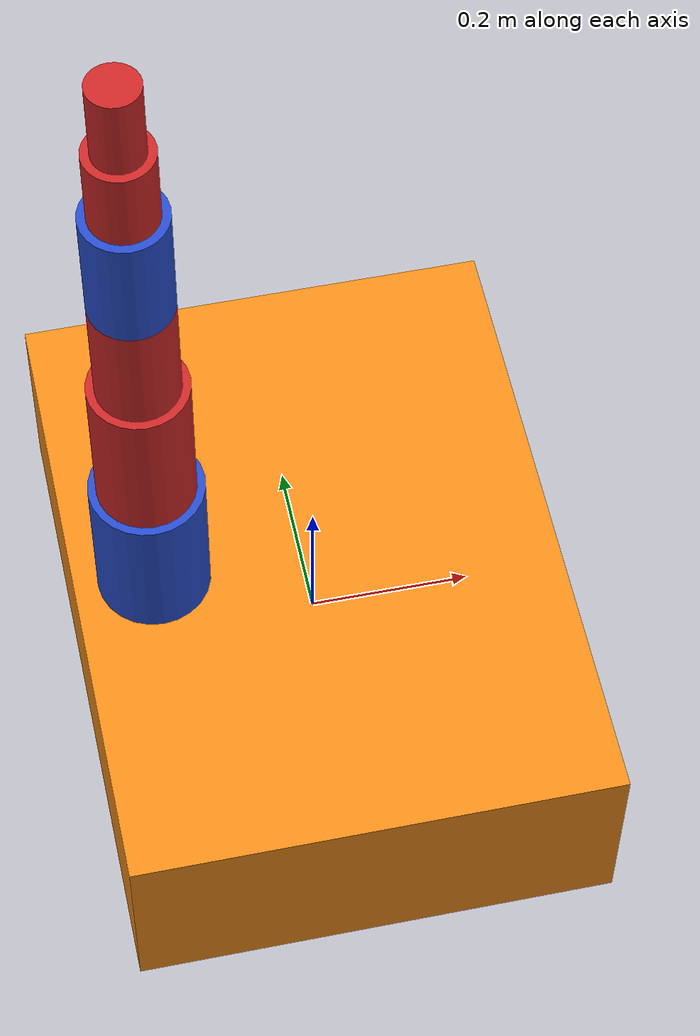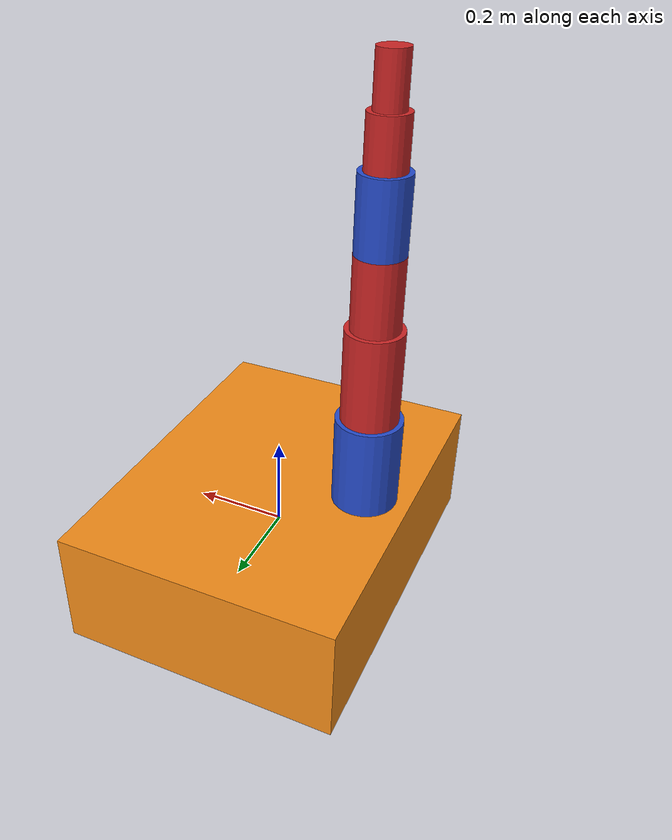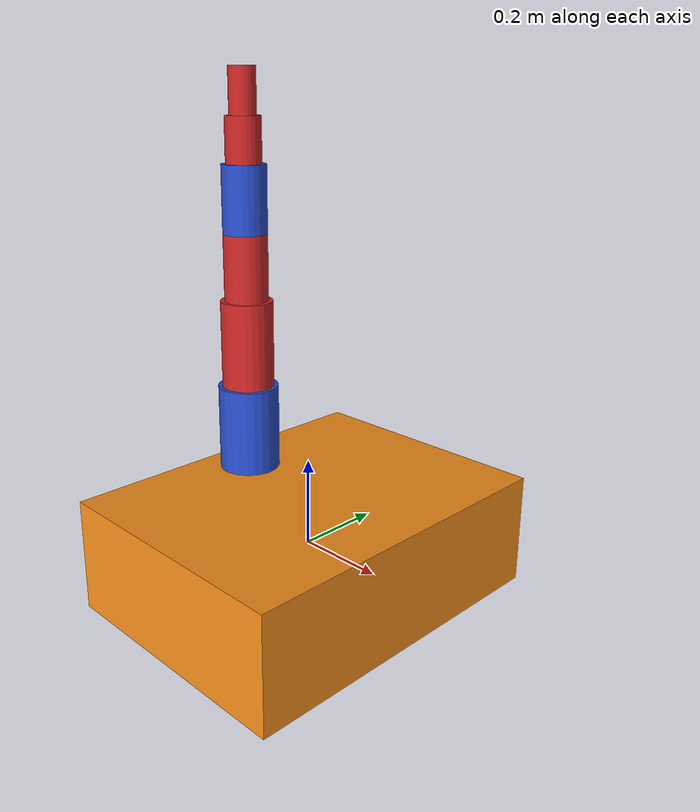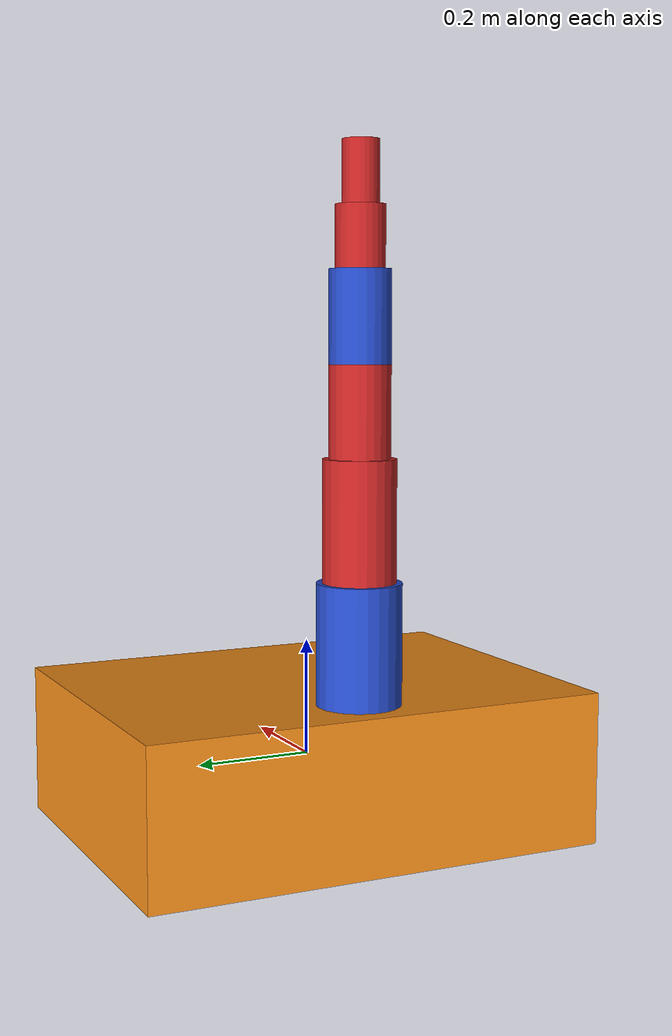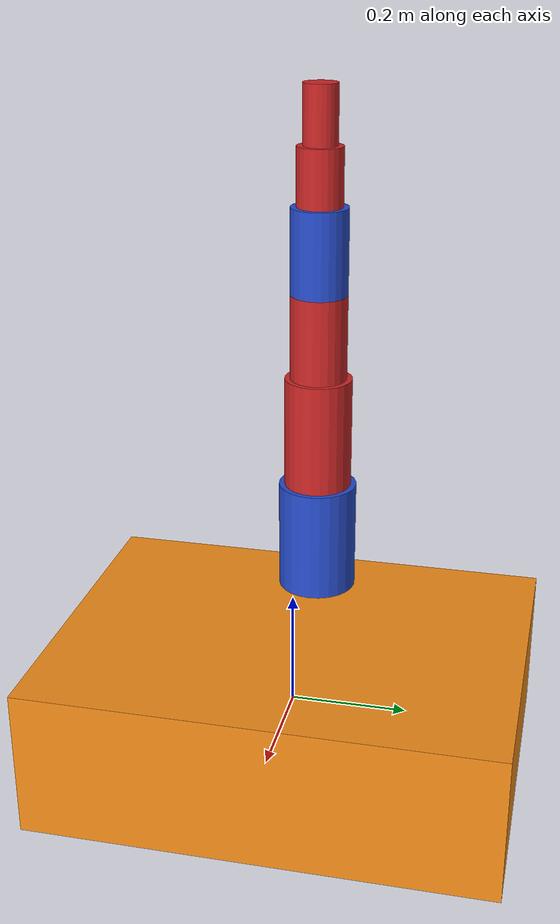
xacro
<?xml version="1.0"?>
<robot xmlns:xacro="http://www.ros.org/wiki/xacro">

<!--Arm base link-->

    <xacro:property name="arm_base_length" value="0.6" />
    <xacro:property name="arm_base_width" value="0.8" />
    <xacro:property name="arm_base_height" value="0.26" />

    <link name="arm_base_link">
        <visual>
            <geometry>
                <box size="${arm_base_length} ${arm_base_width} ${arm_base_height}" />
            </geometry>
            <origin xyz="0 0 0" rpy="0 0 0" />
            <material name="orange" />
        </visual>
        <collision>
            <geometry>
                <box size="${arm_base_length} ${arm_base_width} ${arm_base_height}" />
            </geometry>
            <origin xyz="0 0 0" rpy="0 0 0" />
        </collision>
        <xacro:box_inertia m="10.0" x="${arm_base_length}" y="${arm_base_width}" z="${arm_base_height}"
                           o_xyz="0 0 0" o_rpy="0 0 0" />
    </link>

  <!-- Links and Joints -->

  <xacro:macro name="arm_link" params="link_name parent_name xyz rpy length radius mass ixx iyy izz">
    <link name="${link_name}">
      <visual>
        <geometry>
          <cylinder length="${length}" radius="${radius}"/>
        </geometry>
        <origin xyz="0 0 ${length/2}" rpy="0 0 0"/>
        <material name="red"/>
      </visual>
      <collision>
        <geometry>
          <cylinder length="${length}" radius="${radius}"/>
        </geometry>
        <origin xyz="0 0 ${length/2}" rpy="0 0 0"/>
      </collision>
      <xacro:cylinder_inertia m="0.3" r="${radius}" l="${length}"
                                o_xyz="0 0 ${length / 2.0}" o_rpy="0 0 0" />
    </link>

    <joint name="${link_name}_joint" type="revolute">
      <parent link="${parent_name}"/>
      <child link="${link_name}"/>
      <origin xyz="${xyz}" rpy="${rpy}"/>
      <axis xyz="0 1 0"/>
      <limit lower="${-pi/2}" upper="${pi/2}" effort="100" velocity="100" />
      <dynamics friction="10.0" damping="50.0" />
    </joint>
  </xacro:macro>

     <!-- Z-axis Rotating Link and Joint -->

  <xacro:macro name="z_axis_arm_link" params="link_name parent_name xyz rpy length radius mass ixx iyy izz">
    <link name="${link_name}">
      <visual>
        <geometry>
          <cylinder length="${length}" radius="${radius}"/>
        </geometry>
        <origin xyz="0 0 ${length/2}" rpy="0 0 0"/>
        <material name="blue"/>
      </visual>
      <collision>
        <geometry>
          <cylinder length="${length}" radius="${radius}"/>
        </geometry>
        <origin xyz="0 0 ${length/2}" rpy="0 0 0"/>
      </collision>
      <xacro:cylinder_inertia m="0.3" r="${radius}" l="${length}"
                                o_xyz="0 0 ${length / 2.0}" o_rpy="0 0 0" />
    </link>

    <joint name="${link_name}_joint" type="revolute">
      <parent link="${parent_name}"/>
      <child link="${link_name}"/>
      <origin xyz="${xyz}" rpy="${rpy}"/>
      <axis xyz="0 0 1"/>
      <limit lower="${-pi/2}" upper="${pi/2}" effort="100" velocity="100" />
      <dynamics friction="10.0" damping="50.0" />
    </joint>
  </xacro:macro>

  <!-- Instantiate 6 links -->
  <xacro:z_axis_arm_link link_name="link_1" parent_name="arm_base_link" xyz="${-arm_base_width/4.0} 0 0.13" rpy="0 0 0" length="0.2" radius="0.07" mass="1.0" ixx="0.005" iyy="0.005" izz="0.005"/>
  <xacro:arm_link link_name="link_2" parent_name="link_1" xyz="0 0 0.2" rpy="0 0 0" length="0.2" radius="0.06" mass="0.8" ixx="0.003" iyy="0.003" izz="0.003"/>
  <xacro:arm_link link_name="link_3" parent_name="link_2" xyz="0 0 0.2" rpy="0 0 0" length="0.15" radius="0.05" mass="0.6" ixx="0.002" iyy="0.002" izz="0.002"/>
  <xacro:z_axis_arm_link link_name="link_4" parent_name="link_3" xyz="0 0 0.15" rpy="0 0 0" length="0.15" radius="0.05" mass="0.5" ixx="0.0015" iyy="0.0015" izz="0.0015"/>
  <xacro:arm_link link_name="link_5" parent_name="link_4" xyz="0 0 0.15" rpy="0 0 0" length="0.1" radius="0.04" mass="0.3" ixx="0.001" iyy="0.001" izz="0.001"/>
  <xacro:arm_link link_name="link_6" parent_name="link_5" xyz="0 0 0.1" rpy="0 0 0" length="0.1" radius="0.03" mass="0.2" ixx="0.0008" iyy="0.0008" izz="0.0008"/>

</robot>
